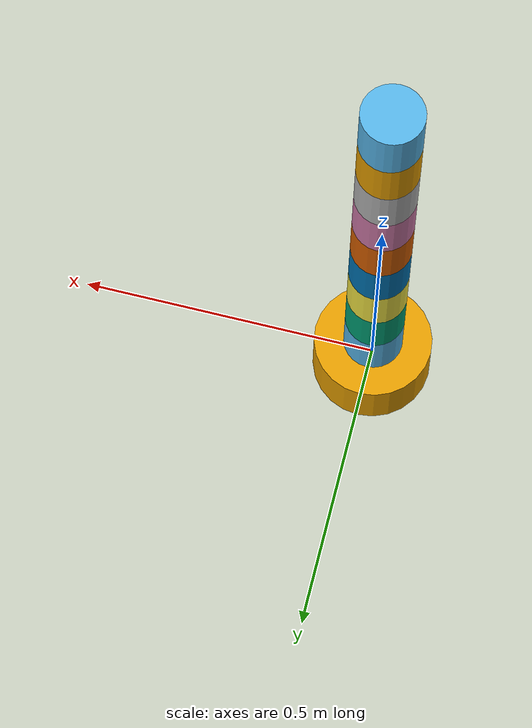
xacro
<?xml version="1.0"?>
<robot xmlns:xacro="http://www.ros.org/wiki/xacro" name="primeu_arm">

  <!-- Import ros2_control description -->
  <xacro:include filename="$(find primeu_description)/urdf/primeu.ros2_control.xacro" />

  <link name="base_link">
    <visual>
      <geometry>
        <cylinder length="0.1" radius="0.1"/>
      </geometry>
    </visual>
  </link>

  <!-- Joint 11 (EtherCAT) -->
  <joint name="joint_11" type="revolute">
    <parent link="base_link"/>
    <child link="link_11"/>
    <origin xyz="0 0 0.1" rpy="0 0 0"/>
    <axis xyz="0 0 1"/>
    <limit lower="-3.14" upper="3.14" effort="100" velocity="10"/>
  </joint>
  <link name="link_11">
    <visual>
      <geometry>
        <cylinder length="0.1" radius="0.05"/>
      </geometry>
    </visual>
  </link>

  <!-- Joint 12 (EtherCAT) -->
  <joint name="joint_12" type="revolute">
    <parent link="link_11"/>
    <child link="link_12"/>
    <origin xyz="0 0 0.1" rpy="0 0 0"/>
    <axis xyz="0 1 0"/>
    <limit lower="-3.14" upper="3.14" effort="100" velocity="10"/>
  </joint>
  <link name="link_12">
    <visual>
      <geometry>
        <cylinder length="0.1" radius="0.05"/>
      </geometry>
    </visual>
  </link>

  <!-- Joint 13 (EtherCAT) -->
  <joint name="joint_13" type="revolute">
    <parent link="link_12"/>
    <child link="link_13"/>
    <origin xyz="0 0 0.1" rpy="0 0 0"/>
    <axis xyz="0 1 0"/>
    <limit lower="-3.14" upper="3.14" effort="100" velocity="10"/>
  </joint>
  <link name="link_13">
    <visual>
      <geometry>
        <cylinder length="0.1" radius="0.05"/>
      </geometry>
    </visual>
  </link>

  <!-- Joint 14 (EtherCAT) -->
  <joint name="joint_14" type="revolute">
    <parent link="link_13"/>
    <child link="link_14"/>
    <origin xyz="0 0 0.1" rpy="0 0 0"/>
    <axis xyz="0 1 0"/>
    <limit lower="-3.14" upper="3.14" effort="100" velocity="10"/>
  </joint>
  <link name="link_14">
    <visual>
      <geometry>
        <cylinder length="0.1" radius="0.05"/>
      </geometry>
    </visual>
  </link>

  <!-- Joint 15 (EtherCAT) -->
  <joint name="joint_15" type="revolute">
    <parent link="link_14"/>
    <child link="link_15"/>
    <origin xyz="0 0 0.1" rpy="0 0 0"/>
    <axis xyz="0 1 0"/>
    <limit lower="-3.14" upper="3.14" effort="100" velocity="10"/>
  </joint>
  <link name="link_15">
    <visual>
      <geometry>
        <cylinder length="0.1" radius="0.05"/>
      </geometry>
    </visual>
  </link>

  <!-- Joint 16 (CAN ID 0x16) -->
  <joint name="joint_16" type="revolute">
    <parent link="link_15"/>
    <child link="link_16"/>
    <origin xyz="0 0 0.1" rpy="0 0 0"/>
    <axis xyz="0 1 0"/>
    <limit lower="-3.14" upper="3.14" effort="100" velocity="10"/>
  </joint>
  <link name="link_16">
    <visual>
      <geometry>
        <cylinder length="0.1" radius="0.05"/>
      </geometry>
    </visual>
  </link>

  <!-- Joint 17 (CAN ID 0x17) -->
  <joint name="joint_17" type="revolute">
    <parent link="link_16"/>
    <child link="link_17"/>
    <origin xyz="0 0 0.1" rpy="0 0 0"/>
    <axis xyz="0 0 1"/>
    <limit lower="-3.14" upper="3.14" effort="100" velocity="10"/>
  </joint>
  <link name="link_17">
    <visual>
      <geometry>
        <cylinder length="0.1" radius="0.05"/>
      </geometry>
    </visual>
  </link>

  <!-- Joint 26 (CAN ID 0x26) -->
  <joint name="joint_26" type="revolute">
    <parent link="link_17"/>
    <child link="link_26"/>
    <origin xyz="0 0 0.1" rpy="0 0 0"/>
    <axis xyz="0 1 0"/>
    <limit lower="-3.14" upper="3.14" effort="100" velocity="10"/>
  </joint>
  <link name="link_26">
    <visual>
      <geometry>
        <cylinder length="0.1" radius="0.05"/>
      </geometry>
    </visual>
  </link>

  <!-- Joint 27 (CAN ID 0x27) -->
  <joint name="joint_27" type="revolute">
    <parent link="link_26"/>
    <child link="link_27"/>
    <origin xyz="0 0 0.1" rpy="0 0 0"/>
    <axis xyz="0 0 1"/>
    <limit lower="-3.14" upper="3.14" effort="100" velocity="10"/>
  </joint>
  <link name="link_27">
    <visual>
      <geometry>
        <cylinder length="0.1" radius="0.05"/>
      </geometry>
    </visual>
  </link>

  <xacro:primeu_ros2_control name="PrimeUSystem" />

</robot>
